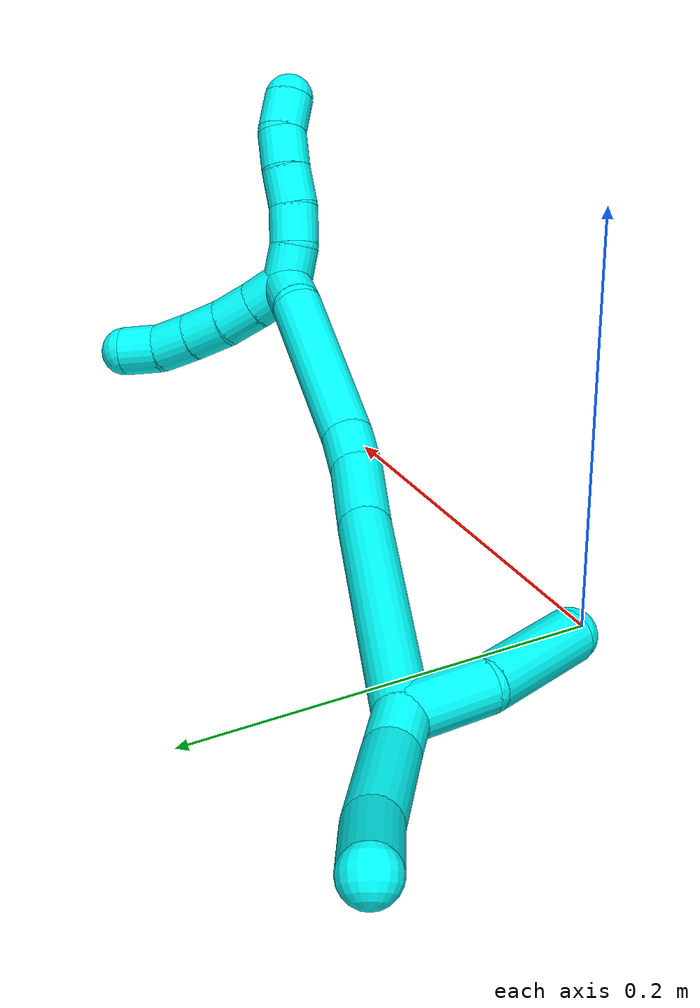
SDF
<sdf version="1.7">
 <world name="default">
  <model name="photoneo_s_sensor">
   <static>1</static>
   <pose>0 0 2 1.57079 1.57079 3.14159</pose>
   <link name="link">
    <inertial><mass>0.1</mass></inertial>
    <sensor name="sensor" type="depth">
     <update_rate>30</update_rate>
     <camera>
      <horizontal_fov>1.22</horizontal_fov>
      <image><width>1920</width><height>1200</height><format>B8G8R8</format></image>
      <clip><near>0.1</near><far>4</far></clip>
      <depth_camera><output>points</output></depth_camera>
     </camera>
     <plugin name="camera_plugin" filename="libgazebo_ros_depth_camera.so">
      <baseline>0.2</baseline>
      <alwaysOn>1</alwaysOn>
      <updateRate>0.0</updateRate>
      <cameraName>camera_ir</cameraName>
      <imageTopicName>/camera/color/image_raw</imageTopicName>
      <cameraInfoTopicName>/camera/color/camera_info</cameraInfoTopicName>
      <depthImageTopicName>/camera/depth/image_raw</depthImageTopicName>
      <depthImageCameraInfoTopicName>/camera/depth/camera_info</depthImageCameraInfoTopicName>
      <pointCloudTopicName>/camera/depth/points</pointCloudTopicName>
      <frameName>fr_optical</frameName>
      <pointCloudCutoff>0.1</pointCloudCutoff>
      <pointCloudCutoffMax>2.0</pointCloudCutoffMax>
      <distortionK1>0</distortionK1>
      <distortionK2>0</distortionK2>
      <distortionK3>0</distortionK3>
      <distortionT1>0</distortionT1>
      <distortionT2>0</distortionT2>
      <CxPrime>0</CxPrime>
      <Cx>0</Cx>
      <Cy>0</Cy>
      <focalLength>0</focalLength>
      <hackBaseline>0</hackBaseline>
     </plugin>
    </sensor>
   </link>
  </model>
  <model name="bin">
   <static>1</static>
   <link name="bottom">
    <collision name="collision-bottom">
     <pose>0 0 -0.01 0 -0 0</pose>
     <geometry><box><size>0.8 0.6 0.02</size></box></geometry>
     <surface>
      <friction><ode><mu>100</mu><mu2>100</mu2></ode></friction>
      <contact><collide_bitmask>65535</collide_bitmask></contact>
     </surface>
    </collision>
   </link>
   <link name="west_wall">
    <collision name="collision-west_wall">
     <pose>-0.41 0 0.1 0 -0 0</pose>
     <geometry><box><size>0.02 0.6 0.2</size></box></geometry>
     <surface>
      <friction><ode><mu>100</mu><mu2>100</mu2></ode></friction>
      <contact><collide_bitmask>65535</collide_bitmask></contact>
     </surface>
    </collision>
   </link>
   <link name="east_wall">
    <collision name="collision-east_wall">
     <pose>0.41 0 0.1 0 -0 0</pose>
     <geometry><box><size>0.02 0.6 0.2</size></box></geometry>
     <surface>
      <friction><ode><mu>100</mu><mu2>100</mu2></ode></friction>
      <contact><collide_bitmask>65535</collide_bitmask></contact>
     </surface>
    </collision>
   </link>
   <link name="south_wall">
    <collision name="collision-south_wall">
     <pose>0 -0.31 0.1 0 -0 0</pose>
     <geometry><box><size>0.8 0.02 0.2</size></box></geometry>
     <surface>
      <friction><ode><mu>100</mu><mu2>100</mu2></ode></friction>
      <contact><collide_bitmask>65535</collide_bitmask></contact>
     </surface>
    </collision>
   </link>
   <link name="north_wall">
    <collision name="collision-north_wall">
     <pose>0 0.31 0.1 0 -0 0</pose>
     <geometry><box><size>0.8 0.02 0.2</size></box></geometry>
     <surface>
      <friction><ode><mu>100</mu><mu2>100</mu2></ode></friction>
      <contact><collide_bitmask>65535</collide_bitmask></contact>
     </surface>
    </collision>
   </link>
  </model>
  <model name="3">
   <static>0</static>
   <link name="3">
    <collision name="collision-cylinder-e_1_2_8">
     <pose>-0.004263 0.00579 -0.00939 -2.5891 -0.36878 1.1638</pose>
     <geometry><cylinder><radius>0.0125</radius><length>0.023654</length></cylinder></geometry>
     <surface>
      <friction><ode><mu>1.16</mu><mu2>1.16</mu2><slip1>0</slip1><slip2>0</slip2></ode></friction>
      <contact><ode><kp>1e+06</kp><kd>1</kd><max_vel>0</max_vel><min_depth>0.001</min_depth></ode></contact>
     </surface>
    </collision>
    <visual name="visual-cylinder-e_1_2_8">
     <pose>-0.004263 0.00579 -0.00939 -2.5891 -0.36878 1.1638</pose>
     <geometry><cylinder><radius>0.0125</radius><length>0.023654</length></cylinder></geometry>
     <material><ambient>0.003922 1 0.996078 1</ambient></material>
    </visual>
    <collision name="collision-cylinder-e_2_8_9">
     <pose>-0.02909 0.03035 -0.038256 -2.37462 -0.65001 1.39163</pose>
     <geometry><cylinder><radius>0.0125</radius><length>0.067955</length></cylinder></geometry>
     <surface>
      <friction><ode><mu>1.16</mu><mu2>1.16</mu2><slip1>0</slip1><slip2>0</slip2></ode></friction>
      <contact><ode><kp>1e+06</kp><kd>1</kd><max_vel>0</max_vel><min_depth>0.001</min_depth></ode></contact>
     </surface>
    </collision>
    <visual name="visual-cylinder-e_2_8_9">
     <pose>-0.02909 0.03035 -0.038256 -2.37462 -0.65001 1.39163</pose>
     <geometry><cylinder><radius>0.0125</radius><length>0.067955</length></cylinder></geometry>
     <material><ambient>0.003922 1 0.996078 1</ambient></material>
    </visual>
    <collision name="collision-cylinder-e_3_9_6">
     <pose>-0.070849 0.064277 -0.070899 -2.28606 -0.812505 1.51273</pose>
     <geometry><cylinder><radius>0.0125</radius><length>0.058391</length></cylinder></geometry>
     <surface>
      <friction><ode><mu>1.16</mu><mu2>1.16</mu2><slip1>0</slip1><slip2>0</slip2></ode></friction>
      <contact><ode><kp>1e+06</kp><kd>1</kd><max_vel>0</max_vel><min_depth>0.001</min_depth></ode></contact>
     </surface>
    </collision>
    <visual name="visual-cylinder-e_3_9_6">
     <pose>-0.070849 0.064277 -0.070899 -2.28606 -0.812505 1.51273</pose>
     <geometry><cylinder><radius>0.0125</radius><length>0.058391</length></cylinder></geometry>
     <material><ambient>0.003922 1 0.996078 1</ambient></material>
    </visual>
    <collision name="collision-cylinder-e_1_2_10">
     <pose>-0.004412 -0.01837 0.007584 1.17925 -0.218438 -0.146459</pose>
     <geometry><cylinder><radius>0.0125</radius><length>0.040716</length></cylinder></geometry>
     <surface>
      <friction><ode><mu>1.16</mu><mu2>1.16</mu2><slip1>0</slip1><slip2>0</slip2></ode></friction>
      <contact><ode><kp>1e+06</kp><kd>1</kd><max_vel>0</max_vel><min_depth>0.001</min_depth></ode></contact>
     </surface>
    </collision>
    <visual name="visual-cylinder-e_1_2_10">
     <pose>-0.004412 -0.01837 0.007584 1.17925 -0.218438 -0.146459</pose>
     <geometry><cylinder><radius>0.0125</radius><length>0.040716</length></cylinder></geometry>
     <material><ambient>0.003922 1 0.996078 1</ambient></material>
    </visual>
    <collision name="collision-cylinder-e_2_10_5">
     <pose>-0.005847 -0.062129 0.030176 1.03696 0.100568 0.057411</pose>
     <geometry><cylinder><radius>0.0125</radius><length>0.059284</length></cylinder></geometry>
     <surface>
      <friction><ode><mu>1.16</mu><mu2>1.16</mu2><slip1>0</slip1><slip2>0</slip2></ode></friction>
      <contact><ode><kp>1e+06</kp><kd>1</kd><max_vel>0</max_vel><min_depth>0.001</min_depth></ode></contact>
     </surface>
    </collision>
    <visual name="visual-cylinder-e_2_10_5">
     <pose>-0.005847 -0.062129 0.030176 1.03696 0.100568 0.057411</pose>
     <geometry><cylinder><radius>0.0125</radius><length>0.059284</length></cylinder></geometry>
     <material><ambient>0.003922 1 0.996078 1</ambient></material>
    </visual>
    <collision name="collision-cylinder-e_1_2_11">
     <pose>0.034735 -0.015207 0.052387 0.282512 0.567015 0.082816</pose>
     <geometry><cylinder><radius>0.0125</radius><length>0.12934</length></cylinder></geometry>
     <surface>
      <friction><ode><mu>1.16</mu><mu2>1.16</mu2><slip1>0</slip1><slip2>0</slip2></ode></friction>
      <contact><ode><kp>1e+06</kp><kd>1</kd><max_vel>0</max_vel><min_depth>0.001</min_depth></ode></contact>
     </surface>
    </collision>
    <visual name="visual-cylinder-e_1_2_11">
     <pose>0.034735 -0.015207 0.052387 0.282512 0.567015 0.082816</pose>
     <geometry><cylinder><radius>0.0125</radius><length>0.12934</length></cylinder></geometry>
     <material><ambient>0.003922 1 0.996078 1</ambient></material>
    </visual>
    <collision name="collision-cylinder-e_2_11_12">
     <pose>0.07949 -0.035125 0.122363 0.261725 0.503025 0.067612</pose>
     <geometry><cylinder><radius>0.0125</radius><length>0.041567</length></cylinder></geometry>
     <surface>
      <friction><ode><mu>1.16</mu><mu2>1.16</mu2><slip1>0</slip1><slip2>0</slip2></ode></friction>
      <contact><ode><kp>1e+06</kp><kd>1</kd><max_vel>0</max_vel><min_depth>0.001</min_depth></ode></contact>
     </surface>
    </collision>
    <visual name="visual-cylinder-e_2_11_12">
     <pose>0.07949 -0.035125 0.122363 0.261725 0.503025 0.067612</pose>
     <geometry><cylinder><radius>0.0125</radius><length>0.041567</length></cylinder></geometry>
     <material><ambient>0.003922 1 0.996078 1</ambient></material>
    </visual>
    <collision name="collision-cylinder-e_3_12_13">
     <pose>0.094623 -0.040699 0.150434 0.082099 0.452593 0.018913</pose>
     <geometry><cylinder><radius>0.0125</radius><length>0.023391</length></cylinder></geometry>
     <surface>
      <friction><ode><mu>1.16</mu><mu2>1.16</mu2><slip1>0</slip1><slip2>0</slip2></ode></friction>
      <contact><ode><kp>1e+06</kp><kd>1</kd><max_vel>0</max_vel><min_depth>0.001</min_depth></ode></contact>
     </surface>
    </collision>
    <visual name="visual-cylinder-e_3_12_13">
     <pose>0.094623 -0.040699 0.150434 0.082099 0.452593 0.018913</pose>
     <geometry><cylinder><radius>0.0125</radius><length>0.023391</length></cylinder></geometry>
     <material><ambient>0.003922 1 0.996078 1</ambient></material>
    </visual>
    <collision name="collision-cylinder-e_4_13_14">
     <pose>0.115086 -0.037102 0.199912 -0.113857 0.372755 -0.021492</pose>
     <geometry><cylinder><radius>0.0125</radius><length>0.084287</length></cylinder></geometry>
     <surface>
      <friction><ode><mu>1.16</mu><mu2>1.16</mu2><slip1>0</slip1><slip2>0</slip2></ode></friction>
      <contact><ode><kp>1e+06</kp><kd>1</kd><max_vel>0</max_vel><min_depth>0.001</min_depth></ode></contact>
     </surface>
    </collision>
    <visual name="visual-cylinder-e_4_13_14">
     <pose>0.115086 -0.037102 0.199912 -0.113857 0.372755 -0.021492</pose>
     <geometry><cylinder><radius>0.0125</radius><length>0.084287</length></cylinder></geometry>
     <material><ambient>0.003922 1 0.996078 1</ambient></material>
    </visual>
    <collision name="collision-cylinder-e_5_14_1">
     <pose>0.136823 -0.033726 0.247431 0.126368 0.639374 0.041883</pose>
     <geometry><cylinder><radius>0.0125</radius><length>0.021416</length></cylinder></geometry>
     <surface>
      <friction><ode><mu>1.16</mu><mu2>1.16</mu2><slip1>0</slip1><slip2>0</slip2></ode></friction>
      <contact><ode><kp>1e+06</kp><kd>1</kd><max_vel>0</max_vel><min_depth>0.001</min_depth></ode></contact>
     </surface>
    </collision>
    <visual name="visual-cylinder-e_5_14_1">
     <pose>0.136823 -0.033726 0.247431 0.126368 0.639374 0.041883</pose>
     <geometry><cylinder><radius>0.0125</radius><length>0.021416</length></cylinder></geometry>
     <material><ambient>0.003922 1 0.996078 1</ambient></material>
    </visual>
    <collision name="collision-cylinder-e_1_1_15">
     <pose>0.138921 -0.034385 0.264978 -0.046993 -0.44356 0.010598</pose>
     <geometry><cylinder><radius>0.0125</radius><length>0.02</length></cylinder></geometry>
     <surface>
      <friction><ode><mu>1.16</mu><mu2>1.16</mu2><slip1>0</slip1><slip2>0</slip2></ode></friction>
      <contact><ode><kp>1e+06</kp><kd>1</kd><max_vel>0</max_vel><min_depth>0.001</min_depth></ode></contact>
     </surface>
    </collision>
    <visual name="visual-cylinder-e_1_1_15">
     <pose>0.138921 -0.034385 0.264978 -0.046993 -0.44356 0.010598</pose>
     <geometry><cylinder><radius>0.0125</radius><length>0.02</length></cylinder></geometry>
     <material><ambient>0.003922 1 0.996078 1</ambient></material>
    </visual>
    <collision name="collision-cylinder-e_2_15_16">
     <pose>0.132801 -0.032575 0.283734 -0.141404 -0.183787 0.013052</pose>
     <geometry><cylinder><radius>0.0125</radius><length>0.02</length></cylinder></geometry>
     <surface>
      <friction><ode><mu>1.16</mu><mu2>1.16</mu2><slip1>0</slip1><slip2>0</slip2></ode></friction>
      <contact><ode><kp>1e+06</kp><kd>1</kd><max_vel>0</max_vel><min_depth>0.001</min_depth></ode></contact>
     </surface>
    </collision>
    <visual name="visual-cylinder-e_2_15_16">
     <pose>0.132801 -0.032575 0.283734 -0.141404 -0.183787 0.013052</pose>
     <geometry><cylinder><radius>0.0125</radius><length>0.02</length></cylinder></geometry>
     <material><ambient>0.003922 1 0.996078 1</ambient></material>
    </visual>
    <collision name="collision-cylinder-e_3_16_17">
     <pose>0.130151 -0.028494 0.303062 -0.27391 -0.082426 0.011366</pose>
     <geometry><cylinder><radius>0.0125</radius><length>0.02</length></cylinder></geometry>
     <surface>
      <friction><ode><mu>1.16</mu><mu2>1.16</mu2><slip1>0</slip1><slip2>0</slip2></ode></friction>
      <contact><ode><kp>1e+06</kp><kd>1</kd><max_vel>0</max_vel><min_depth>0.001</min_depth></ode></contact>
     </surface>
    </collision>
    <visual name="visual-cylinder-e_3_16_17">
     <pose>0.130151 -0.028494 0.303062 -0.27391 -0.082426 0.011366</pose>
     <geometry><cylinder><radius>0.0125</radius><length>0.02</length></cylinder></geometry>
     <material><ambient>0.003922 1 0.996078 1</ambient></material>
    </visual>
    <collision name="collision-cylinder-e_4_17_18">
     <pose>0.128695 -0.0242 0.322508 -0.160751 -0.063263 0.005097</pose>
     <geometry><cylinder><radius>0.0125</radius><length>0.02</length></cylinder></geometry>
     <surface>
      <friction><ode><mu>1.16</mu><mu2>1.16</mu2><slip1>0</slip1><slip2>0</slip2></ode></friction>
      <contact><ode><kp>1e+06</kp><kd>1</kd><max_vel>0</max_vel><min_depth>0.001</min_depth></ode></contact>
     </surface>
    </collision>
    <visual name="visual-cylinder-e_4_17_18">
     <pose>0.128695 -0.0242 0.322508 -0.160751 -0.063263 0.005097</pose>
     <geometry><cylinder><radius>0.0125</radius><length>0.02</length></cylinder></geometry>
     <material><ambient>0.003922 1 0.996078 1</ambient></material>
    </visual>
    <collision name="collision-cylinder-e_5_18_4">
     <pose>0.126962 -0.024018 0.342197 0.142838 -0.110311 -0.0079</pose>
     <geometry><cylinder><radius>0.0125</radius><length>0.02</length></cylinder></geometry>
     <surface>
      <friction><ode><mu>1.16</mu><mu2>1.16</mu2><slip1>0</slip1><slip2>0</slip2></ode></friction>
      <contact><ode><kp>1e+06</kp><kd>1</kd><max_vel>0</max_vel><min_depth>0.001</min_depth></ode></contact>
     </surface>
    </collision>
    <visual name="visual-cylinder-e_5_18_4">
     <pose>0.126962 -0.024018 0.342197 0.142838 -0.110311 -0.0079</pose>
     <geometry><cylinder><radius>0.0125</radius><length>0.02</length></cylinder></geometry>
     <material><ambient>0.003922 1 0.996078 1</ambient></material>
    </visual>
    <collision name="collision-cylinder-e_1_1_19">
     <pose>0.15199 -0.031169 0.252841 -2.27854 1.07117 -1.82182</pose>
     <geometry><cylinder><radius>0.0125</radius><length>0.02</length></cylinder></geometry>
     <surface>
      <friction><ode><mu>1.16</mu><mu2>1.16</mu2><slip1>0</slip1><slip2>0</slip2></ode></friction>
      <contact><ode><kp>1e+06</kp><kd>1</kd><max_vel>0</max_vel><min_depth>0.001</min_depth></ode></contact>
     </surface>
    </collision>
    <visual name="visual-cylinder-e_1_1_19">
     <pose>0.15199 -0.031169 0.252841 -2.27854 1.07117 -1.82182</pose>
     <geometry><cylinder><radius>0.0125</radius><length>0.02</length></cylinder></geometry>
     <material><ambient>0.003922 1 0.996078 1</ambient></material>
    </visual>
    <collision name="collision-cylinder-e_2_19_20">
     <pose>0.169479 -0.023485 0.246941 -2.17399 1.05749 -1.67664</pose>
     <geometry><cylinder><radius>0.0125</radius><length>0.02</length></cylinder></geometry>
     <surface>
      <friction><ode><mu>1.16</mu><mu2>1.16</mu2><slip1>0</slip1><slip2>0</slip2></ode></friction>
      <contact><ode><kp>1e+06</kp><kd>1</kd><max_vel>0</max_vel><min_depth>0.001</min_depth></ode></contact>
     </surface>
    </collision>
    <visual name="visual-cylinder-e_2_19_20">
     <pose>0.169479 -0.023485 0.246941 -2.17399 1.05749 -1.67664</pose>
     <geometry><cylinder><radius>0.0125</radius><length>0.02</length></cylinder></geometry>
     <material><ambient>0.003922 1 0.996078 1</ambient></material>
    </visual>
    <collision name="collision-cylinder-e_3_20_21">
     <pose>0.18702 -0.015025 0.242564 -1.9166 1.08227 -1.41514</pose>
     <geometry><cylinder><radius>0.0125</radius><length>0.02</length></cylinder></geometry>
     <surface>
      <friction><ode><mu>1.16</mu><mu2>1.16</mu2><slip1>0</slip1><slip2>0</slip2></ode></friction>
      <contact><ode><kp>1e+06</kp><kd>1</kd><max_vel>0</max_vel><min_depth>0.001</min_depth></ode></contact>
     </surface>
    </collision>
    <visual name="visual-cylinder-e_3_20_21">
     <pose>0.18702 -0.015025 0.242564 -1.9166 1.08227 -1.41514</pose>
     <geometry><cylinder><radius>0.0125</radius><length>0.02</length></cylinder></geometry>
     <material><ambient>0.003922 1 0.996078 1</ambient></material>
    </visual>
    <collision name="collision-cylinder-e_4_21_22">
     <pose>0.204634 -0.005993 0.239733 -1.83332 1.07231 -1.31858</pose>
     <geometry><cylinder><radius>0.0125</radius><length>0.02</length></cylinder></geometry>
     <surface>
      <friction><ode><mu>1.16</mu><mu2>1.16</mu2><slip1>0</slip1><slip2>0</slip2></ode></friction>
      <contact><ode><kp>1e+06</kp><kd>1</kd><max_vel>0</max_vel><min_depth>0.001</min_depth></ode></contact>
     </surface>
    </collision>
    <visual name="visual-cylinder-e_4_21_22">
     <pose>0.204634 -0.005993 0.239733 -1.83332 1.07231 -1.31858</pose>
     <geometry><cylinder><radius>0.0125</radius><length>0.02</length></cylinder></geometry>
     <material><ambient>0.003922 1 0.996078 1</ambient></material>
    </visual>
    <collision name="collision-cylinder-e_5_22_3">
     <pose>0.221073 0.00504 0.238951 -1.4994 0.872098 -0.81865</pose>
     <geometry><cylinder><radius>0.0125</radius><length>0.02</length></cylinder></geometry>
     <surface>
      <friction><ode><mu>1.16</mu><mu2>1.16</mu2><slip1>0</slip1><slip2>0</slip2></ode></friction>
      <contact><ode><kp>1e+06</kp><kd>1</kd><max_vel>0</max_vel><min_depth>0.001</min_depth></ode></contact>
     </surface>
    </collision>
    <visual name="visual-cylinder-e_5_22_3">
     <pose>0.221073 0.00504 0.238951 -1.4994 0.872098 -0.81865</pose>
     <geometry><cylinder><radius>0.0125</radius><length>0.02</length></cylinder></geometry>
     <material><ambient>0.003922 1 0.996078 1</ambient></material>
    </visual>
    <collision name="collision-sphere-3">
     <pose>0.22873 0.011456 0.23941 0 -0 0</pose>
     <geometry><sphere><radius>0.0125</radius></sphere></geometry>
     <surface>
      <friction><ode><mu>1.16</mu><mu2>1.16</mu2><slip1>0</slip1><slip2>0</slip2></ode></friction>
      <contact><ode><kp>1e+06</kp><kd>1</kd><max_vel>0</max_vel><min_depth>0.001</min_depth></ode></contact>
     </surface>
    </collision>
    <visual name="visual-sphere-3">
     <pose>0.22873 0.011456 0.23941 0 -0 0</pose>
     <geometry><sphere><radius>0.0125</radius></sphere></geometry>
     <material><ambient>0.003922 1 0.996078 1</ambient></material>
    </visual>
    <collision name="collision-sphere-22">
     <pose>0.213417 -0.001375 0.238492 0 -0 0</pose>
     <geometry><sphere><radius>0.0125</radius></sphere></geometry>
     <surface>
      <friction><ode><mu>1.16</mu><mu2>1.16</mu2><slip1>0</slip1><slip2>0</slip2></ode></friction>
      <contact><ode><kp>1e+06</kp><kd>1</kd><max_vel>0</max_vel><min_depth>0.001</min_depth></ode></contact>
     </surface>
    </collision>
    <visual name="visual-sphere-22">
     <pose>0.213417 -0.001375 0.238492 0 -0 0</pose>
     <geometry><sphere><radius>0.0125</radius></sphere></geometry>
     <material><ambient>0.003922 1 0.996078 1</ambient></material>
    </visual>
    <collision name="collision-sphere-21">
     <pose>0.195851 -0.01061 0.240973 0 -0 0</pose>
     <geometry><sphere><radius>0.0125</radius></sphere></geometry>
     <surface>
      <friction><ode><mu>1.16</mu><mu2>1.16</mu2><slip1>0</slip1><slip2>0</slip2></ode></friction>
      <contact><ode><kp>1e+06</kp><kd>1</kd><max_vel>0</max_vel><min_depth>0.001</min_depth></ode></contact>
     </surface>
    </collision>
    <visual name="visual-sphere-21">
     <pose>0.195851 -0.01061 0.240973 0 -0 0</pose>
     <geometry><sphere><radius>0.0125</radius></sphere></geometry>
     <material><ambient>0.003922 1 0.996078 1</ambient></material>
    </visual>
    <collision name="collision-sphere-20">
     <pose>0.17819 -0.019441 0.244155 0 -0 0</pose>
     <geometry><sphere><radius>0.0125</radius></sphere></geometry>
     <surface>
      <friction><ode><mu>1.16</mu><mu2>1.16</mu2><slip1>0</slip1><slip2>0</slip2></ode></friction>
      <contact><ode><kp>1e+06</kp><kd>1</kd><max_vel>0</max_vel><min_depth>0.001</min_depth></ode></contact>
     </surface>
    </collision>
    <visual name="visual-sphere-20">
     <pose>0.17819 -0.019441 0.244155 0 -0 0</pose>
     <geometry><sphere><radius>0.0125</radius></sphere></geometry>
     <material><ambient>0.003922 1 0.996078 1</ambient></material>
    </visual>
    <collision name="collision-sphere-19">
     <pose>0.160767 -0.027529 0.249726 0 -0 0</pose>
     <geometry><sphere><radius>0.0125</radius></sphere></geometry>
     <surface>
      <friction><ode><mu>1.16</mu><mu2>1.16</mu2><slip1>0</slip1><slip2>0</slip2></ode></friction>
      <contact><ode><kp>1e+06</kp><kd>1</kd><max_vel>0</max_vel><min_depth>0.001</min_depth></ode></contact>
     </surface>
    </collision>
    <visual name="visual-sphere-19">
     <pose>0.160767 -0.027529 0.249726 0 -0 0</pose>
     <geometry><sphere><radius>0.0125</radius></sphere></geometry>
     <material><ambient>0.003922 1 0.996078 1</ambient></material>
    </visual>
    <collision name="collision-sphere-5">
     <pose>-0.002871 -0.087518 0.045183 0 -0 0</pose>
     <geometry><sphere><radius>0.0125</radius></sphere></geometry>
     <surface>
      <friction><ode><mu>1.16</mu><mu2>1.16</mu2><slip1>0</slip1><slip2>0</slip2></ode></friction>
      <contact><ode><kp>1e+06</kp><kd>1</kd><max_vel>0</max_vel><min_depth>0.001</min_depth></ode></contact>
     </surface>
    </collision>
    <visual name="visual-sphere-5">
     <pose>-0.002871 -0.087518 0.045183 0 -0 0</pose>
     <geometry><sphere><radius>0.0125</radius></sphere></geometry>
     <material><ambient>0.003922 1 0.996078 1</ambient></material>
    </visual>
    <collision name="collision-sphere-10">
     <pose>-0.008823 -0.03674 0.015169 0 -0 0</pose>
     <geometry><sphere><radius>0.0125</radius></sphere></geometry>
     <surface>
      <friction><ode><mu>1.16</mu><mu2>1.16</mu2><slip1>0</slip1><slip2>0</slip2></ode></friction>
      <contact><ode><kp>1e+06</kp><kd>1</kd><max_vel>0</max_vel><min_depth>0.001</min_depth></ode></contact>
     </surface>
    </collision>
    <visual name="visual-sphere-10">
     <pose>-0.008823 -0.03674 0.015169 0 -0 0</pose>
     <geometry><sphere><radius>0.0125</radius></sphere></geometry>
     <material><ambient>0.003922 1 0.996078 1</ambient></material>
    </visual>
    <collision name="collision-sphere-6">
     <pose>-0.092045 0.079434 -0.084066 0 -0 0</pose>
     <geometry><sphere><radius>0.0125</radius></sphere></geometry>
     <surface>
      <friction><ode><mu>1.16</mu><mu2>1.16</mu2><slip1>0</slip1><slip2>0</slip2></ode></friction>
      <contact><ode><kp>1e+06</kp><kd>1</kd><max_vel>0</max_vel><min_depth>0.001</min_depth></ode></contact>
     </surface>
    </collision>
    <visual name="visual-sphere-6">
     <pose>-0.092045 0.079434 -0.084066 0 -0 0</pose>
     <geometry><sphere><radius>0.0125</radius></sphere></geometry>
     <material><ambient>0.003922 1 0.996078 1</ambient></material>
    </visual>
    <collision name="collision-sphere-9">
     <pose>-0.049653 0.049121 -0.057732 0 -0 0</pose>
     <geometry><sphere><radius>0.0125</radius></sphere></geometry>
     <surface>
      <friction><ode><mu>1.16</mu><mu2>1.16</mu2><slip1>0</slip1><slip2>0</slip2></ode></friction>
      <contact><ode><kp>1e+06</kp><kd>1</kd><max_vel>0</max_vel><min_depth>0.001</min_depth></ode></contact>
     </surface>
    </collision>
    <visual name="visual-sphere-9">
     <pose>-0.049653 0.049121 -0.057732 0 -0 0</pose>
     <geometry><sphere><radius>0.0125</radius></sphere></geometry>
     <material><ambient>0.003922 1 0.996078 1</ambient></material>
    </visual>
    <collision name="collision-sphere-2">
     <geometry><sphere><radius>0.0125</radius></sphere></geometry>
     <surface>
      <friction><ode><mu>1.16</mu><mu2>1.16</mu2><slip1>0</slip1><slip2>0</slip2></ode></friction>
      <contact><ode><kp>1e+06</kp><kd>1</kd><max_vel>0</max_vel><min_depth>0.001</min_depth></ode></contact>
     </surface>
    </collision>
    <visual name="visual-sphere-2">
     <geometry><sphere><radius>0.0125</radius></sphere></geometry>
     <material><ambient>0.003922 1 0.996078 1</ambient></material>
    </visual>
    <collision name="collision-sphere-8">
     <pose>-0.008527 0.011579 -0.018781 0 -0 0</pose>
     <geometry><sphere><radius>0.0125</radius></sphere></geometry>
     <surface>
      <friction><ode><mu>1.16</mu><mu2>1.16</mu2><slip1>0</slip1><slip2>0</slip2></ode></friction>
      <contact><ode><kp>1e+06</kp><kd>1</kd><max_vel>0</max_vel><min_depth>0.001</min_depth></ode></contact>
     </surface>
    </collision>
    <visual name="visual-sphere-8">
     <pose>-0.008527 0.011579 -0.018781 0 -0 0</pose>
     <geometry><sphere><radius>0.0125</radius></sphere></geometry>
     <material><ambient>0.003922 1 0.996078 1</ambient></material>
    </visual>
    <collision name="collision-sphere-11">
     <pose>0.069471 -0.030413 0.104774 0 -0 0</pose>
     <geometry><sphere><radius>0.0125</radius></sphere></geometry>
     <surface>
      <friction><ode><mu>1.16</mu><mu2>1.16</mu2><slip1>0</slip1><slip2>0</slip2></ode></friction>
      <contact><ode><kp>1e+06</kp><kd>1</kd><max_vel>0</max_vel><min_depth>0.001</min_depth></ode></contact>
     </surface>
    </collision>
    <visual name="visual-sphere-11">
     <pose>0.069471 -0.030413 0.104774 0 -0 0</pose>
     <geometry><sphere><radius>0.0125</radius></sphere></geometry>
     <material><ambient>0.003922 1 0.996078 1</ambient></material>
    </visual>
    <collision name="collision-sphere-12">
     <pose>0.089509 -0.039837 0.139952 0 -0 0</pose>
     <geometry><sphere><radius>0.0125</radius></sphere></geometry>
     <surface>
      <friction><ode><mu>1.16</mu><mu2>1.16</mu2><slip1>0</slip1><slip2>0</slip2></ode></friction>
      <contact><ode><kp>1e+06</kp><kd>1</kd><max_vel>0</max_vel><min_depth>0.001</min_depth></ode></contact>
     </surface>
    </collision>
    <visual name="visual-sphere-12">
     <pose>0.089509 -0.039837 0.139952 0 -0 0</pose>
     <geometry><sphere><radius>0.0125</radius></sphere></geometry>
     <material><ambient>0.003922 1 0.996078 1</ambient></material>
    </visual>
    <collision name="collision-sphere-13">
     <pose>0.099738 -0.041562 0.160917 0 -0 0</pose>
     <geometry><sphere><radius>0.0125</radius></sphere></geometry>
     <surface>
      <friction><ode><mu>1.16</mu><mu2>1.16</mu2><slip1>0</slip1><slip2>0</slip2></ode></friction>
      <contact><ode><kp>1e+06</kp><kd>1</kd><max_vel>0</max_vel><min_depth>0.001</min_depth></ode></contact>
     </surface>
    </collision>
    <visual name="visual-sphere-13">
     <pose>0.099738 -0.041562 0.160917 0 -0 0</pose>
     <geometry><sphere><radius>0.0125</radius></sphere></geometry>
     <material><ambient>0.003922 1 0.996078 1</ambient></material>
    </visual>
    <collision name="collision-sphere-14">
     <pose>0.130434 -0.032643 0.238907 0 -0 0</pose>
     <geometry><sphere><radius>0.0125</radius></sphere></geometry>
     <surface>
      <friction><ode><mu>1.16</mu><mu2>1.16</mu2><slip1>0</slip1><slip2>0</slip2></ode></friction>
      <contact><ode><kp>1e+06</kp><kd>1</kd><max_vel>0</max_vel><min_depth>0.001</min_depth></ode></contact>
     </surface>
    </collision>
    <visual name="visual-sphere-14">
     <pose>0.130434 -0.032643 0.238907 0 -0 0</pose>
     <geometry><sphere><radius>0.0125</radius></sphere></geometry>
     <material><ambient>0.003922 1 0.996078 1</ambient></material>
    </visual>
    <collision name="collision-sphere-1">
     <pose>0.143212 -0.034809 0.255956 0 -0 0</pose>
     <geometry><sphere><radius>0.0125</radius></sphere></geometry>
     <surface>
      <friction><ode><mu>1.16</mu><mu2>1.16</mu2><slip1>0</slip1><slip2>0</slip2></ode></friction>
      <contact><ode><kp>1e+06</kp><kd>1</kd><max_vel>0</max_vel><min_depth>0.001</min_depth></ode></contact>
     </surface>
    </collision>
    <visual name="visual-sphere-1">
     <pose>0.143212 -0.034809 0.255956 0 -0 0</pose>
     <geometry><sphere><radius>0.0125</radius></sphere></geometry>
     <material><ambient>0.003922 1 0.996078 1</ambient></material>
    </visual>
    <collision name="collision-sphere-18">
     <pose>0.128063 -0.022603 0.332359 0 -0 0</pose>
     <geometry><sphere><radius>0.0125</radius></sphere></geometry>
     <surface>
      <friction><ode><mu>1.16</mu><mu2>1.16</mu2><slip1>0</slip1><slip2>0</slip2></ode></friction>
      <contact><ode><kp>1e+06</kp><kd>1</kd><max_vel>0</max_vel><min_depth>0.001</min_depth></ode></contact>
     </surface>
    </collision>
    <visual name="visual-sphere-18">
     <pose>0.128063 -0.022603 0.332359 0 -0 0</pose>
     <geometry><sphere><radius>0.0125</radius></sphere></geometry>
     <material><ambient>0.003922 1 0.996078 1</ambient></material>
    </visual>
    <collision name="collision-sphere-15">
     <pose>0.134629 -0.033961 0.274 0 -0 0</pose>
     <geometry><sphere><radius>0.0125</radius></sphere></geometry>
     <surface>
      <friction><ode><mu>1.16</mu><mu2>1.16</mu2><slip1>0</slip1><slip2>0</slip2></ode></friction>
      <contact><ode><kp>1e+06</kp><kd>1</kd><max_vel>0</max_vel><min_depth>0.001</min_depth></ode></contact>
     </surface>
    </collision>
    <visual name="visual-sphere-15">
     <pose>0.134629 -0.033961 0.274 0 -0 0</pose>
     <geometry><sphere><radius>0.0125</radius></sphere></geometry>
     <material><ambient>0.003922 1 0.996078 1</ambient></material>
    </visual>
    <collision name="collision-sphere-16">
     <pose>0.130974 -0.031189 0.293467 0 -0 0</pose>
     <geometry><sphere><radius>0.0125</radius></sphere></geometry>
     <surface>
      <friction><ode><mu>1.16</mu><mu2>1.16</mu2><slip1>0</slip1><slip2>0</slip2></ode></friction>
      <contact><ode><kp>1e+06</kp><kd>1</kd><max_vel>0</max_vel><min_depth>0.001</min_depth></ode></contact>
     </surface>
    </collision>
    <visual name="visual-sphere-16">
     <pose>0.130974 -0.031189 0.293467 0 -0 0</pose>
     <geometry><sphere><radius>0.0125</radius></sphere></geometry>
     <material><ambient>0.003922 1 0.996078 1</ambient></material>
    </visual>
    <collision name="collision-sphere-17">
     <pose>0.129327 -0.025798 0.312656 0 -0 0</pose>
     <geometry><sphere><radius>0.0125</radius></sphere></geometry>
     <surface>
      <friction><ode><mu>1.16</mu><mu2>1.16</mu2><slip1>0</slip1><slip2>0</slip2></ode></friction>
      <contact><ode><kp>1e+06</kp><kd>1</kd><max_vel>0</max_vel><min_depth>0.001</min_depth></ode></contact>
     </surface>
    </collision>
    <visual name="visual-sphere-17">
     <pose>0.129327 -0.025798 0.312656 0 -0 0</pose>
     <geometry><sphere><radius>0.0125</radius></sphere></geometry>
     <material><ambient>0.003922 1 0.996078 1</ambient></material>
    </visual>
    <collision name="collision-sphere-4">
     <pose>0.125861 -0.025433 0.352035 0 -0 0</pose>
     <geometry><sphere><radius>0.0125</radius></sphere></geometry>
     <surface>
      <friction><ode><mu>1.16</mu><mu2>1.16</mu2><slip1>0</slip1><slip2>0</slip2></ode></friction>
      <contact><ode><kp>1e+06</kp><kd>1</kd><max_vel>0</max_vel><min_depth>0.001</min_depth></ode></contact>
     </surface>
    </collision>
    <visual name="visual-sphere-4">
     <pose>0.125861 -0.025433 0.352035 0 -0 0</pose>
     <geometry><sphere><radius>0.0125</radius></sphere></geometry>
     <material><ambient>0.003922 1 0.996078 1</ambient></material>
    </visual>
    <inertial>
     <pose>0.063645 -0.014657 0.116554 0 -0 0</pose>
     <mass>0.75</mass>
     <inertia>
      <ixx>0.00031</ixx>
      <ixy>0</ixy>
      <ixz>0</ixz>
      <iyy>0.000334</iyy>
      <iyz>0</iyz>
      <izz>-4.2e-05</izz>
     </inertia>
    </inertial>
   </link>
   <pose>-0.041027 0.117135 0.014347 0.528793 0.668515 0.274241</pose>
  </model>
 </world>
</sdf>
